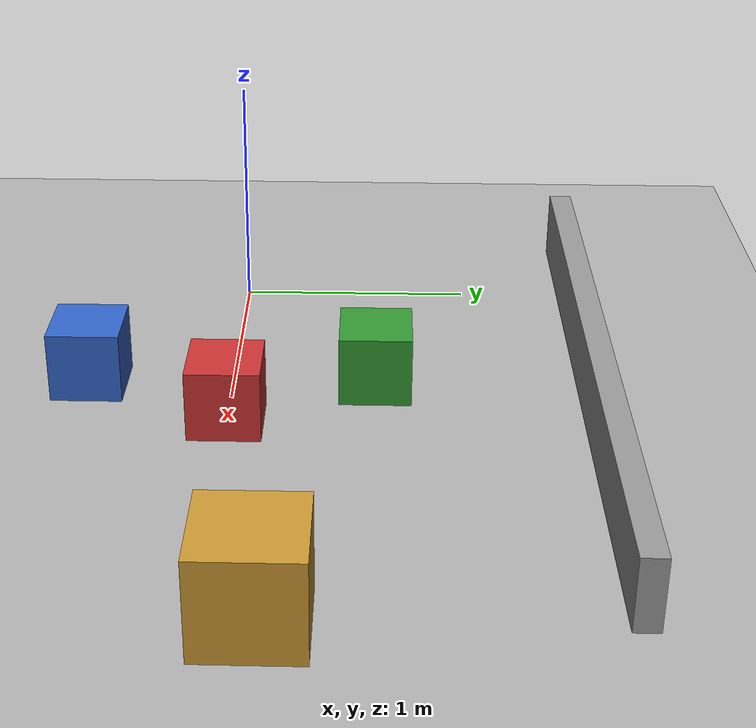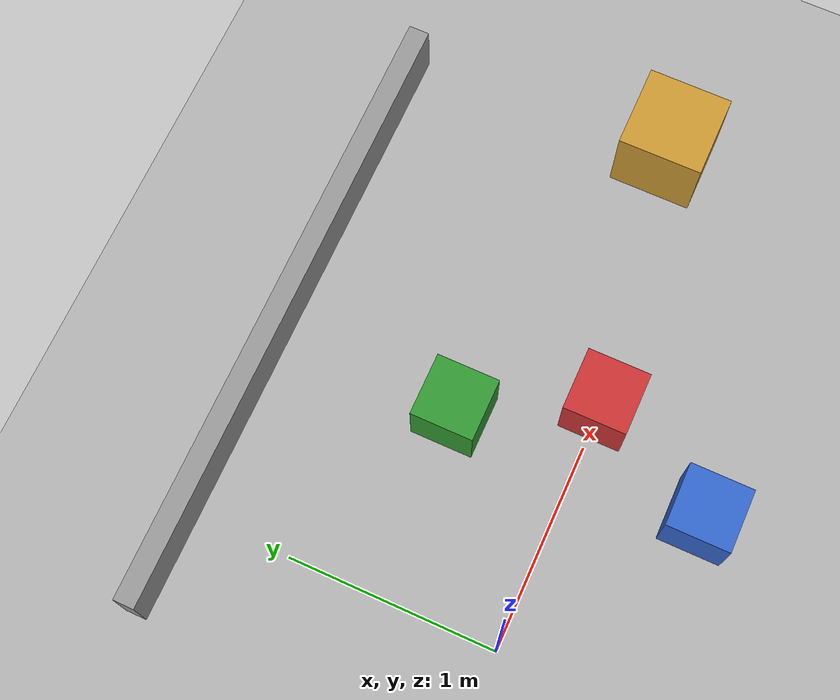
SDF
<?xml version="1.0" ?>
<sdf version="1.6">
  <world name="obstacles">

    <light name="sun" type="directional">
      <cast_shadows>true</cast_shadows>
      <pose>0 0 10 0 0 0</pose>
      <diffuse>0.8 0.8 0.8 1</diffuse>
      <specular>0.2 0.2 0.2 1</specular>
      <attenuation>
        <range>1000</range>
        <constant>0.9</constant>
        <linear>0.01</linear>
        <quadratic>0.001</quadratic>
      </attenuation>
      <direction>-0.5 0.1 -0.9</direction>
    </light>

    <model name="ground_plane">
      <static>true</static>
      <link name="link">
        <collision name="collision">
          <geometry>
            <plane>
              <normal>0 0 1</normal>
              <size>100 100</size>
            </plane>
          </geometry>
          <surface>
            <friction>
              <ode>
                <mu>100</mu>
                <mu2>50</mu2>
              </ode>
            </friction>
          </surface>
        </collision>
        <visual name="visual">
          <cast_shadows>false</cast_shadows>
          <geometry>
            <plane>
              <normal>0 0 1</normal>
              <size>100 100</size>
            </plane>
          </geometry>
          <material>
            <ambient>0.8 0.8 0.8 1</ambient>
            <diffuse>0.7 0.7 0.7 1</diffuse>
          </material>
        </visual>
      </link>
    </model>

    <!-- Keep the simulation real-time and the step small enough that a
         0.035 m wheel does not tunnel through the ground plane. -->
    <physics name="default_physics" default="true" type="ode">
      <max_step_size>0.001</max_step_size>
      <real_time_factor>1.0</real_time_factor>
      <real_time_update_rate>1000</real_time_update_rate>
      <ode>
        <solver>
          <type>quick</type>
          <iters>100</iters>
          <sor>1.3</sor>
        </solver>
        <constraints>
          <cfm>0.0</cfm>
          <erp>0.2</erp>
          <contact_max_correcting_vel>100.0</contact_max_correcting_vel>
          <contact_surface_layer>0.001</contact_surface_layer>
        </constraints>
      </ode>
    </physics>

    <plugin name="gazebo_ros_state" filename="libgazebo_ros_state.so">
      <ros>
        <namespace>/gazebo</namespace>
      </ros>
      <update_rate>50.0</update_rate>
    </plugin>

    <gui fullscreen="0">
      <camera name="user_camera">
        <pose>-1.95 -1.95 1.45 0 0.50 0.785</pose>
      </camera>
    </gui>

    <scene>
      <ambient>0.4 0.4 0.4 1</ambient>
      <background>0.7 0.7 0.7 1</background>
      <shadows>true</shadows>
    </scene>

    <!-- ============ obstacles ============ -->

    <model name="front_box">
      <static>true</static>
      <pose>1.2 0 0.15 0 0 0</pose>
      <link name="link">
        <collision name="collision">
          <geometry><box><size>0.3 0.3 0.3</size></box></geometry>
        </collision>
        <visual name="visual">
          <geometry><box><size>0.3 0.3 0.3</size></box></geometry>
          <material><ambient>0.8 0.2 0.2 1</ambient><diffuse>0.8 0.2 0.2 1</diffuse></material>
        </visual>
      </link>
    </model>

    <model name="left_box">
      <static>true</static>
      <pose>0.9 0.6 0.15 0 0 0</pose>
      <link name="link">
        <collision name="collision">
          <geometry><box><size>0.3 0.3 0.3</size></box></geometry>
        </collision>
        <visual name="visual">
          <geometry><box><size>0.3 0.3 0.3</size></box></geometry>
          <material><ambient>0.2 0.6 0.2 1</ambient><diffuse>0.2 0.6 0.2 1</diffuse></material>
        </visual>
      </link>
    </model>

    <model name="right_box">
      <static>true</static>
      <pose>0.9 -0.6 0.15 0 0 0</pose>
      <link name="link">
        <collision name="collision">
          <geometry><box><size>0.3 0.3 0.3</size></box></geometry>
        </collision>
        <visual name="visual">
          <geometry><box><size>0.3 0.3 0.3</size></box></geometry>
          <material><ambient>0.2 0.4 0.8 1</ambient><diffuse>0.2 0.4 0.8 1</diffuse></material>
        </visual>
      </link>
    </model>

    <model name="far_box">
      <static>true</static>
      <pose>2.5 0.2 0.2 0 0 0</pose>
      <link name="link">
        <collision name="collision">
          <geometry><box><size>0.4 0.4 0.4</size></box></geometry>
        </collision>
        <visual name="visual">
          <geometry><box><size>0.4 0.4 0.4</size></box></geometry>
          <material><ambient>0.8 0.6 0.2 1</ambient><diffuse>0.8 0.6 0.2 1</diffuse></material>
        </visual>
      </link>
    </model>

    <model name="side_wall">
      <static>true</static>
      <pose>1.0 1.5 0.15 0 0 0</pose>
      <link name="link">
        <collision name="collision">
          <geometry><box><size>3.0 0.1 0.3</size></box></geometry>
        </collision>
        <visual name="visual">
          <geometry><box><size>3.0 0.1 0.3</size></box></geometry>
          <material><ambient>0.6 0.6 0.6 1</ambient><diffuse>0.6 0.6 0.6 1</diffuse></material>
        </visual>
      </link>
    </model>

  </world>
</sdf>
